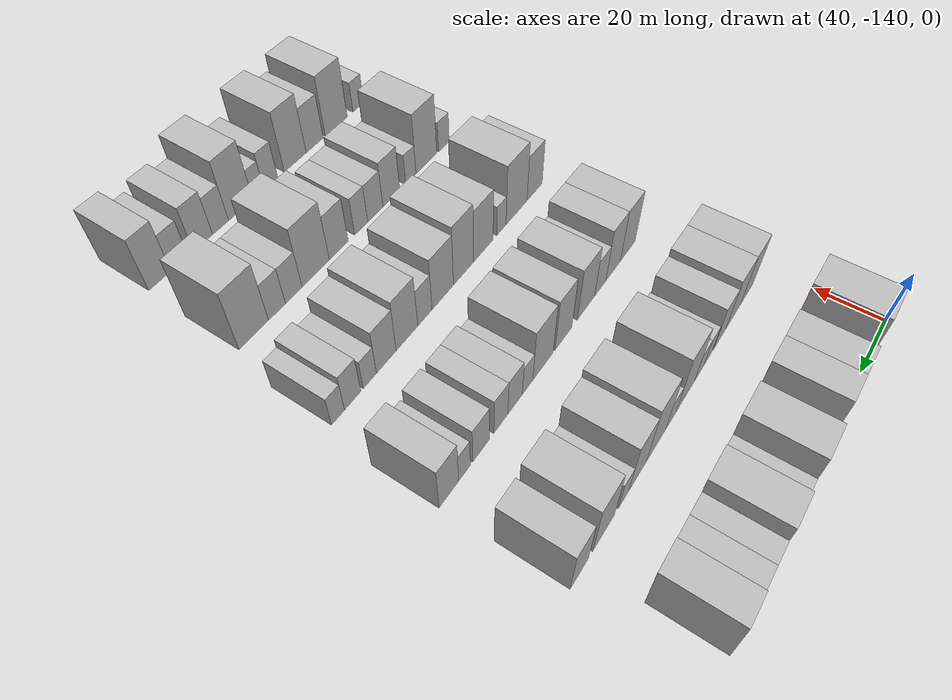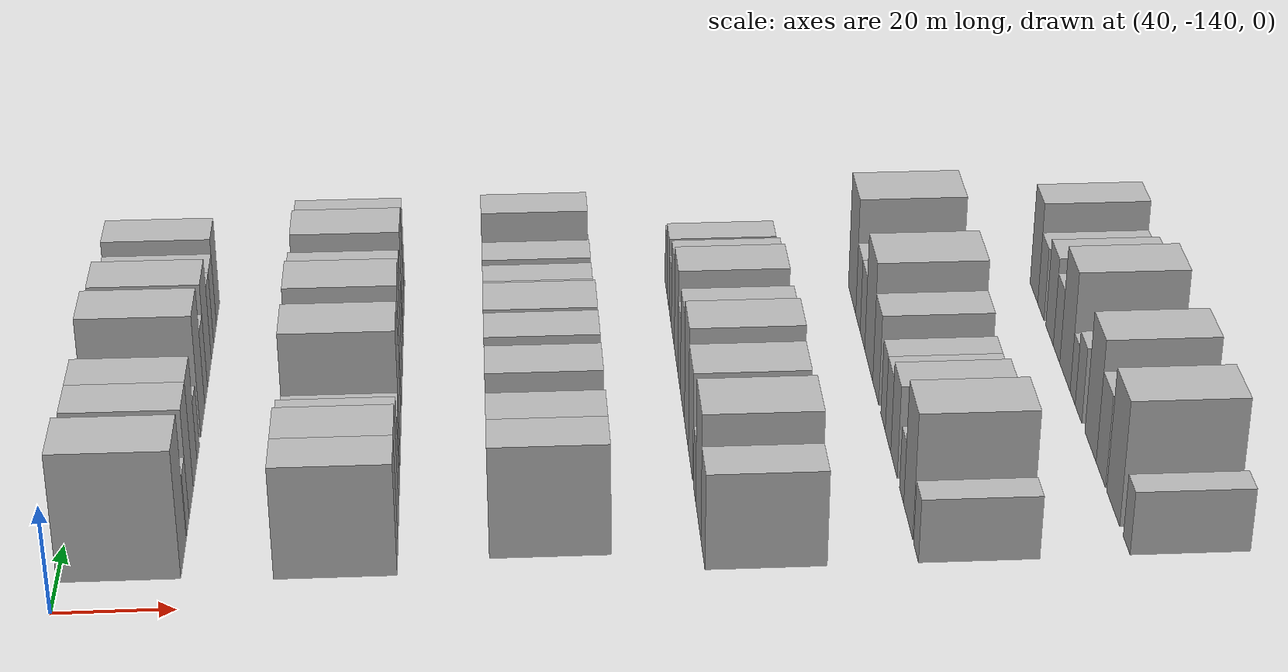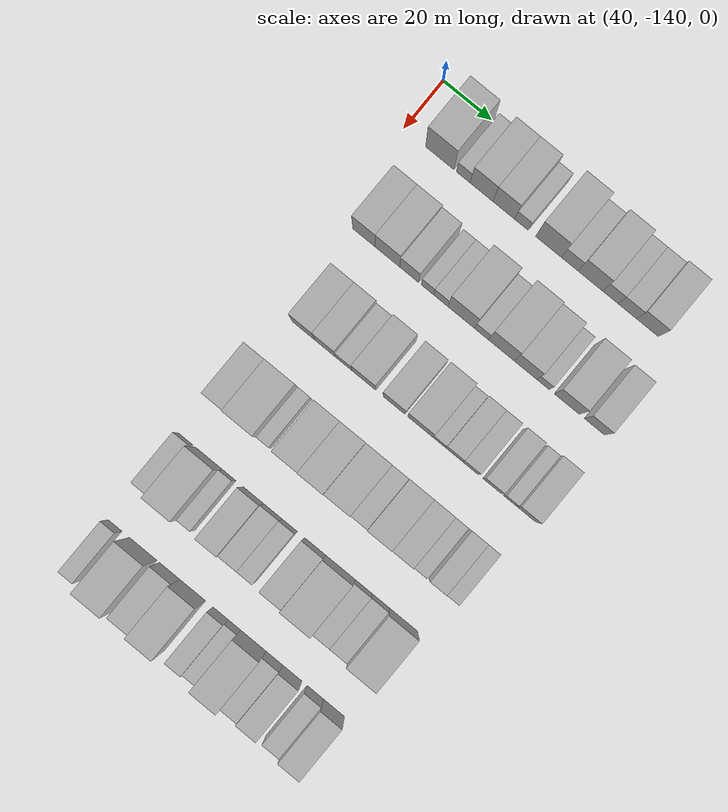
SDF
<sdf version="1.6">
 <world name="default">
  <model name="building_44">
   <static>1</static>
   <pose>50.0000 -125.1948 0 0.000000 0.000000 0.000000</pose>
   <link name="link">
    <pose>0 0 12.00 0 0 0</pose>
    <collision name="collision"><geometry><box><size>20.0000 11.6354 24.0000</size></box></geometry></collision>
    <visual name="visual">
     <cast_shadows>0</cast_shadows>
     <geometry><box><size>20.0000 11.6354 24.0000</size></box></geometry>
     <material>
      <script>
       <uri>model://HANNAS_wall/materials/scripts</uri>
       <uri>model://HANNAS_wall/materials/textures</uri>
       <name>vrc/HANNAS_wall</name>
      </script>
     </material>
    </visual>
   </link>
  </model>
  <model name="building_45">
   <static>1</static>
   <pose>50.0000 -115.5677 0 0.000000 0.000000 0.000000</pose>
   <link name="link">
    <pose>0 0 6.00 0 0 0</pose>
    <collision name="collision"><geometry><box><size>20.0000 5.6187 12.0000</size></box></geometry></collision>
    <visual name="visual">
     <cast_shadows>0</cast_shadows>
     <geometry><box><size>20.0000 5.6187 12.0000</size></box></geometry>
     <material>
      <script>
       <uri>model://HANNAS_wall/materials/scripts</uri>
       <uri>model://HANNAS_wall/materials/textures</uri>
       <name>vrc/HANNAS_wall</name>
      </script>
     </material>
    </visual>
   </link>
  </model>
  <model name="building_46">
   <static>1</static>
   <pose>50.0000 -108.0615 0 0.000000 0.000000 0.000000</pose>
   <link name="link">
    <pose>0 0 10.50 0 0 0</pose>
    <collision name="collision"><geometry><box><size>20.0000 9.3937 21.0000</size></box></geometry></collision>
    <visual name="visual">
     <cast_shadows>0</cast_shadows>
     <geometry><box><size>20.0000 9.3937 21.0000</size></box></geometry>
     <material>
      <script>
       <uri>model://HANNAS_wall/materials/scripts</uri>
       <uri>model://HANNAS_wall/materials/textures</uri>
       <name>vrc/HANNAS_wall</name>
      </script>
     </material>
    </visual>
   </link>
  </model>
  <model name="building_47">
   <static>1</static>
   <pose>50.0000 -98.9167 0 0.000000 0.000000 0.000000</pose>
   <link name="link">
    <pose>0 0 10.50 0 0 0</pose>
    <collision name="collision"><geometry><box><size>20.0000 8.8960 21.0000</size></box></geometry></collision>
    <visual name="visual">
     <cast_shadows>0</cast_shadows>
     <geometry><box><size>20.0000 8.8960 21.0000</size></box></geometry>
     <material>
      <script>
       <uri>model://HANNAS_wall/materials/scripts</uri>
       <uri>model://HANNAS_wall/materials/textures</uri>
       <name>vrc/HANNAS_wall</name>
      </script>
     </material>
    </visual>
   </link>
  </model>
  <model name="building_48">
   <static>1</static>
   <pose>50.0000 -91.6531 0 0.000000 0.000000 0.000000</pose>
   <link name="link">
    <pose>0 0 6.00 0 0 0</pose>
    <collision name="collision"><geometry><box><size>20.0000 5.6313 12.0000</size></box></geometry></collision>
    <visual name="visual">
     <cast_shadows>0</cast_shadows>
     <geometry><box><size>20.0000 5.6313 12.0000</size></box></geometry>
     <material>
      <script>
       <uri>model://HANNAS_wall/materials/scripts</uri>
       <uri>model://HANNAS_wall/materials/textures</uri>
       <name>vrc/HANNAS_wall</name>
      </script>
     </material>
    </visual>
   </link>
  </model>
  <model name="building_49">
   <static>1</static>
   <pose>50.0000 -80.5970 0 0.000000 0.000000 0.000000</pose>
   <link name="link">
    <pose>0 0 12.00 0 0 0</pose>
    <collision name="collision"><geometry><box><size>20.0000 10.4808 24.0000</size></box></geometry></collision>
    <visual name="visual">
     <cast_shadows>0</cast_shadows>
     <geometry><box><size>20.0000 10.4808 24.0000</size></box></geometry>
     <material>
      <script>
       <uri>model://HANNAS_wall/materials/scripts</uri>
       <uri>model://HANNAS_wall/materials/textures</uri>
       <name>vrc/HANNAS_wall</name>
      </script>
     </material>
    </visual>
   </link>
  </model>
  <model name="building_50">
   <static>1</static>
   <pose>50.0000 -71.9100 0 0.000000 0.000000 0.000000</pose>
   <link name="link">
    <pose>0 0 7.50 0 0 0</pose>
    <collision name="collision"><geometry><box><size>20.0000 6.8932 15.0000</size></box></geometry></collision>
    <visual name="visual">
     <cast_shadows>0</cast_shadows>
     <geometry><box><size>20.0000 6.8932 15.0000</size></box></geometry>
     <material>
      <script>
       <uri>model://HANNAS_wall/materials/scripts</uri>
       <uri>model://HANNAS_wall/materials/textures</uri>
       <name>vrc/HANNAS_wall</name>
      </script>
     </material>
    </visual>
   </link>
  </model>
  <model name="building_51">
   <static>1</static>
   <pose>50.0000 -63.4535 0 0.000000 0.000000 0.000000</pose>
   <link name="link">
    <pose>0 0 10.50 0 0 0</pose>
    <collision name="collision"><geometry><box><size>20.0000 10.0200 21.0000</size></box></geometry></collision>
    <visual name="visual">
     <cast_shadows>0</cast_shadows>
     <geometry><box><size>20.0000 10.0200 21.0000</size></box></geometry>
     <material>
      <script>
       <uri>model://HANNAS_wall/materials/scripts</uri>
       <uri>model://HANNAS_wall/materials/textures</uri>
       <name>vrc/HANNAS_wall</name>
      </script>
     </material>
    </visual>
   </link>
  </model>
  <model name="building_52">
   <static>1</static>
   <pose>50.0000 -55.2991 0 0.000000 0.000000 0.000000</pose>
   <link name="link">
    <pose>0 0 7.50 0 0 0</pose>
    <collision name="collision"><geometry><box><size>20.0000 6.2887 15.0000</size></box></geometry></collision>
    <visual name="visual">
     <cast_shadows>0</cast_shadows>
     <geometry><box><size>20.0000 6.2887 15.0000</size></box></geometry>
     <material>
      <script>
       <uri>model://HANNAS_wall/materials/scripts</uri>
       <uri>model://HANNAS_wall/materials/textures</uri>
       <name>vrc/HANNAS_wall</name>
      </script>
     </material>
    </visual>
   </link>
  </model>
  <model name="building_53">
   <static>1</static>
   <pose>50.0000 -48.4106 0 0.000000 0.000000 0.000000</pose>
   <link name="link">
    <pose>0 0 7.50 0 0 0</pose>
    <collision name="collision"><geometry><box><size>20.0000 7.4884 15.0000</size></box></geometry></collision>
    <visual name="visual">
     <cast_shadows>0</cast_shadows>
     <geometry><box><size>20.0000 7.4884 15.0000</size></box></geometry>
     <material>
      <script>
       <uri>model://HANNAS_wall/materials/scripts</uri>
       <uri>model://HANNAS_wall/materials/textures</uri>
       <name>vrc/HANNAS_wall</name>
      </script>
     </material>
    </visual>
   </link>
  </model>
  <model name="building_54">
   <static>1</static>
   <pose>50.0000 -40.1829 0 0.000000 0.000000 0.000000</pose>
   <link name="link">
    <pose>0 0 9.00 0 0 0</pose>
    <collision name="collision"><geometry><box><size>20.0000 8.9669 18.0000</size></box></geometry></collision>
    <visual name="visual">
     <cast_shadows>0</cast_shadows>
     <geometry><box><size>20.0000 8.9669 18.0000</size></box></geometry>
     <material>
      <script>
       <uri>model://HANNAS_wall/materials/scripts</uri>
       <uri>model://HANNAS_wall/materials/textures</uri>
       <name>vrc/HANNAS_wall</name>
      </script>
     </material>
    </visual>
   </link>
  </model>
  <model name="building_176">
   <static>1</static>
   <pose>85.0000 -127.4559 0 0.000000 0.000000 0.000000</pose>
   <link name="link">
    <pose>0 0 10.50 0 0 0</pose>
    <collision name="collision"><geometry><box><size>20.0000 9.1978 21.0000</size></box></geometry></collision>
    <visual name="visual">
     <cast_shadows>0</cast_shadows>
     <geometry><box><size>20.0000 9.1978 21.0000</size></box></geometry>
     <material>
      <script>
       <uri>model://HANNAS_wall/materials/scripts</uri>
       <uri>model://HANNAS_wall/materials/textures</uri>
       <name>vrc/HANNAS_wall</name>
      </script>
     </material>
    </visual>
   </link>
  </model>
  <model name="building_177">
   <static>1</static>
   <pose>85.0000 -117.8306 0 0.000000 0.000000 0.000000</pose>
   <link name="link">
    <pose>0 0 10.50 0 0 0</pose>
    <collision name="collision"><geometry><box><size>20.0000 10.0528 21.0000</size></box></geometry></collision>
    <visual name="visual">
     <cast_shadows>0</cast_shadows>
     <geometry><box><size>20.0000 10.0528 21.0000</size></box></geometry>
     <material>
      <script>
       <uri>model://HANNAS_wall/materials/scripts</uri>
       <uri>model://HANNAS_wall/materials/textures</uri>
       <name>vrc/HANNAS_wall</name>
      </script>
     </material>
    </visual>
   </link>
  </model>
  <model name="building_178">
   <static>1</static>
   <pose>85.0000 -108.9233 0 0.000000 0.000000 0.000000</pose>
   <link name="link">
    <pose>0 0 9.00 0 0 0</pose>
    <collision name="collision"><geometry><box><size>20.0000 7.7618 18.0000</size></box></geometry></collision>
    <visual name="visual">
     <cast_shadows>0</cast_shadows>
     <geometry><box><size>20.0000 7.7618 18.0000</size></box></geometry>
     <material>
      <script>
       <uri>model://HANNAS_wall/materials/scripts</uri>
       <uri>model://HANNAS_wall/materials/textures</uri>
       <name>vrc/HANNAS_wall</name>
      </script>
     </material>
    </visual>
   </link>
  </model>
  <model name="building_179">
   <static>1</static>
   <pose>85.0000 -101.5424 0 0.000000 0.000000 0.000000</pose>
   <link name="link">
    <pose>0 0 6.00 0 0 0</pose>
    <collision name="collision"><geometry><box><size>20.0000 4.9999 12.0000</size></box></geometry></collision>
    <visual name="visual">
     <cast_shadows>0</cast_shadows>
     <geometry><box><size>20.0000 4.9999 12.0000</size></box></geometry>
     <material>
      <script>
       <uri>model://HANNAS_wall/materials/scripts</uri>
       <uri>model://HANNAS_wall/materials/textures</uri>
       <name>vrc/HANNAS_wall</name>
      </script>
     </material>
    </visual>
   </link>
  </model>
  <model name="building_180">
   <static>1</static>
   <pose>85.0000 -96.0987 0 0.000000 0.000000 0.000000</pose>
   <link name="link">
    <pose>0 0 6.00 0 0 0</pose>
    <collision name="collision"><geometry><box><size>20.0000 5.8877 12.0000</size></box></geometry></collision>
    <visual name="visual">
     <cast_shadows>0</cast_shadows>
     <geometry><box><size>20.0000 5.8877 12.0000</size></box></geometry>
     <material>
      <script>
       <uri>model://HANNAS_wall/materials/scripts</uri>
       <uri>model://HANNAS_wall/materials/textures</uri>
       <name>vrc/HANNAS_wall</name>
      </script>
     </material>
    </visual>
   </link>
  </model>
  <model name="building_181">
   <static>1</static>
   <pose>85.0000 -87.7137 0 0.000000 0.000000 0.000000</pose>
   <link name="link">
    <pose>0 0 12.00 0 0 0</pose>
    <collision name="collision"><geometry><box><size>20.0000 10.8822 24.0000</size></box></geometry></collision>
    <visual name="visual">
     <cast_shadows>0</cast_shadows>
     <geometry><box><size>20.0000 10.8822 24.0000</size></box></geometry>
     <material>
      <script>
       <uri>model://HANNAS_wall/materials/scripts</uri>
       <uri>model://HANNAS_wall/materials/textures</uri>
       <name>vrc/HANNAS_wall</name>
      </script>
     </material>
    </visual>
   </link>
  </model>
  <model name="building_182">
   <static>1</static>
   <pose>85.0000 -79.3883 0 0.000000 0.000000 0.000000</pose>
   <link name="link">
    <pose>0 0 6.00 0 0 0</pose>
    <collision name="collision"><geometry><box><size>20.0000 5.7686 12.0000</size></box></geometry></collision>
    <visual name="visual">
     <cast_shadows>0</cast_shadows>
     <geometry><box><size>20.0000 5.7686 12.0000</size></box></geometry>
     <material>
      <script>
       <uri>model://HANNAS_wall/materials/scripts</uri>
       <uri>model://HANNAS_wall/materials/textures</uri>
       <name>vrc/HANNAS_wall</name>
      </script>
     </material>
    </visual>
   </link>
  </model>
  <model name="building_183">
   <static>1</static>
   <pose>85.0000 -71.2640 0 0.000000 0.000000 0.000000</pose>
   <link name="link">
    <pose>0 0 12.00 0 0 0</pose>
    <collision name="collision"><geometry><box><size>20.0000 10.4800 24.0000</size></box></geometry></collision>
    <visual name="visual">
     <cast_shadows>0</cast_shadows>
     <geometry><box><size>20.0000 10.4800 24.0000</size></box></geometry>
     <material>
      <script>
       <uri>model://HANNAS_wall/materials/scripts</uri>
       <uri>model://HANNAS_wall/materials/textures</uri>
       <name>vrc/HANNAS_wall</name>
      </script>
     </material>
    </visual>
   </link>
  </model>
  <model name="building_184">
   <static>1</static>
   <pose>85.0000 -61.4055 0 0.000000 0.000000 0.000000</pose>
   <link name="link">
    <pose>0 0 10.50 0 0 0</pose>
    <collision name="collision"><geometry><box><size>20.0000 9.2370 21.0000</size></box></geometry></collision>
    <visual name="visual">
     <cast_shadows>0</cast_shadows>
     <geometry><box><size>20.0000 9.2370 21.0000</size></box></geometry>
     <material>
      <script>
       <uri>model://HANNAS_wall/materials/scripts</uri>
       <uri>model://HANNAS_wall/materials/textures</uri>
       <name>vrc/HANNAS_wall</name>
      </script>
     </material>
    </visual>
   </link>
  </model>
  <model name="building_185">
   <static>1</static>
   <pose>85.0000 -54.2216 0 0.000000 0.000000 0.000000</pose>
   <link name="link">
    <pose>0 0 6.00 0 0 0</pose>
    <collision name="collision"><geometry><box><size>20.0000 5.1307 12.0000</size></box></geometry></collision>
    <visual name="visual">
     <cast_shadows>0</cast_shadows>
     <geometry><box><size>20.0000 5.1307 12.0000</size></box></geometry>
     <material>
      <script>
       <uri>model://HANNAS_wall/materials/scripts</uri>
       <uri>model://HANNAS_wall/materials/textures</uri>
       <name>vrc/HANNAS_wall</name>
      </script>
     </material>
    </visual>
   </link>
  </model>
  <model name="building_186">
   <static>1</static>
   <pose>85.0000 -44.5384 0 0.000000 0.000000 0.000000</pose>
   <link name="link">
    <pose>0 0 10.50 0 0 0</pose>
    <collision name="collision"><geometry><box><size>20.0000 10.2357 21.0000</size></box></geometry></collision>
    <visual name="visual">
     <cast_shadows>0</cast_shadows>
     <geometry><box><size>20.0000 10.2357 21.0000</size></box></geometry>
     <material>
      <script>
       <uri>model://HANNAS_wall/materials/scripts</uri>
       <uri>model://HANNAS_wall/materials/textures</uri>
       <name>vrc/HANNAS_wall</name>
      </script>
     </material>
    </visual>
   </link>
  </model>
  <model name="building_187">
   <static>1</static>
   <pose>85.0000 -33.3006 0 0.000000 0.000000 0.000000</pose>
   <link name="link">
    <pose>0 0 9.00 0 0 0</pose>
    <collision name="collision"><geometry><box><size>20.0000 8.2400 18.0000</size></box></geometry></collision>
    <visual name="visual">
     <cast_shadows>0</cast_shadows>
     <geometry><box><size>20.0000 8.2400 18.0000</size></box></geometry>
     <material>
      <script>
       <uri>model://HANNAS_wall/materials/scripts</uri>
       <uri>model://HANNAS_wall/materials/textures</uri>
       <name>vrc/HANNAS_wall</name>
      </script>
     </material>
    </visual>
   </link>
  </model>
  <model name="building_294">
   <static>1</static>
   <pose>120.0000 -123.2537 0 0.000000 0.000000 0.000000</pose>
   <link name="link">
    <pose>0 0 10.50 0 0 0</pose>
    <collision name="collision"><geometry><box><size>20.0000 9.1590 21.0000</size></box></geometry></collision>
    <visual name="visual">
     <cast_shadows>0</cast_shadows>
     <geometry><box><size>20.0000 9.1590 21.0000</size></box></geometry>
     <material>
      <script>
       <uri>model://HANNAS_wall/materials/scripts</uri>
       <uri>model://HANNAS_wall/materials/textures</uri>
       <name>vrc/HANNAS_wall</name>
      </script>
     </material>
    </visual>
   </link>
  </model>
  <model name="building_295">
   <static>1</static>
   <pose>120.0000 -114.3227 0 0.000000 0.000000 0.000000</pose>
   <link name="link">
    <pose>0 0 10.50 0 0 0</pose>
    <collision name="collision"><geometry><box><size>20.0000 8.7031 21.0000</size></box></geometry></collision>
    <visual name="visual">
     <cast_shadows>0</cast_shadows>
     <geometry><box><size>20.0000 8.7031 21.0000</size></box></geometry>
     <material>
      <script>
       <uri>model://HANNAS_wall/materials/scripts</uri>
       <uri>model://HANNAS_wall/materials/textures</uri>
       <name>vrc/HANNAS_wall</name>
      </script>
     </material>
    </visual>
   </link>
  </model>
  <model name="building_296">
   <static>1</static>
   <pose>120.0000 -106.6994 0 0.000000 0.000000 0.000000</pose>
   <link name="link">
    <pose>0 0 7.50 0 0 0</pose>
    <collision name="collision"><geometry><box><size>20.0000 6.5434 15.0000</size></box></geometry></collision>
    <visual name="visual">
     <cast_shadows>0</cast_shadows>
     <geometry><box><size>20.0000 6.5434 15.0000</size></box></geometry>
     <material>
      <script>
       <uri>model://HANNAS_wall/materials/scripts</uri>
       <uri>model://HANNAS_wall/materials/textures</uri>
       <name>vrc/HANNAS_wall</name>
      </script>
     </material>
    </visual>
   </link>
  </model>
  <model name="building_297">
   <static>1</static>
   <pose>120.0000 -98.6085 0 0.000000 0.000000 0.000000</pose>
   <link name="link">
    <pose>0 0 10.50 0 0 0</pose>
    <collision name="collision"><geometry><box><size>20.0000 9.6384 21.0000</size></box></geometry></collision>
    <visual name="visual">
     <cast_shadows>0</cast_shadows>
     <geometry><box><size>20.0000 9.6384 21.0000</size></box></geometry>
     <material>
      <script>
       <uri>model://HANNAS_wall/materials/scripts</uri>
       <uri>model://HANNAS_wall/materials/textures</uri>
       <name>vrc/HANNAS_wall</name>
      </script>
     </material>
    </visual>
   </link>
  </model>
  <model name="building_298">
   <static>1</static>
   <pose>120.0000 -86.3195 0 0.000000 0.000000 0.000000</pose>
   <link name="link">
    <pose>0 0 10.50 0 0 0</pose>
    <collision name="collision"><geometry><box><size>20.0000 8.9395 21.0000</size></box></geometry></collision>
    <visual name="visual">
     <cast_shadows>0</cast_shadows>
     <geometry><box><size>20.0000 8.9395 21.0000</size></box></geometry>
     <material>
      <script>
       <uri>model://HANNAS_wall/materials/scripts</uri>
       <uri>model://HANNAS_wall/materials/textures</uri>
       <name>vrc/HANNAS_wall</name>
      </script>
     </material>
    </visual>
   </link>
  </model>
  <model name="building_299">
   <static>1</static>
   <pose>120.0000 -75.7126 0 0.000000 0.000000 0.000000</pose>
   <link name="link">
    <pose>0 0 10.50 0 0 0</pose>
    <collision name="collision"><geometry><box><size>20.0000 10.2743 21.0000</size></box></geometry></collision>
    <visual name="visual">
     <cast_shadows>0</cast_shadows>
     <geometry><box><size>20.0000 10.2743 21.0000</size></box></geometry>
     <material>
      <script>
       <uri>model://HANNAS_wall/materials/scripts</uri>
       <uri>model://HANNAS_wall/materials/textures</uri>
       <name>vrc/HANNAS_wall</name>
      </script>
     </material>
    </visual>
   </link>
  </model>
  <model name="building_300">
   <static>1</static>
   <pose>120.0000 -68.0052 0 0.000000 0.000000 0.000000</pose>
   <link name="link">
    <pose>0 0 6.00 0 0 0</pose>
    <collision name="collision"><geometry><box><size>20.0000 5.1406 12.0000</size></box></geometry></collision>
    <visual name="visual">
     <cast_shadows>0</cast_shadows>
     <geometry><box><size>20.0000 5.1406 12.0000</size></box></geometry>
     <material>
      <script>
       <uri>model://HANNAS_wall/materials/scripts</uri>
       <uri>model://HANNAS_wall/materials/textures</uri>
       <name>vrc/HANNAS_wall</name>
      </script>
     </material>
    </visual>
   </link>
  </model>
  <model name="building_301">
   <static>1</static>
   <pose>120.0000 -61.9763 0 0.000000 0.000000 0.000000</pose>
   <link name="link">
    <pose>0 0 7.50 0 0 0</pose>
    <collision name="collision"><geometry><box><size>20.0000 6.9171 15.0000</size></box></geometry></collision>
    <visual name="visual">
     <cast_shadows>0</cast_shadows>
     <geometry><box><size>20.0000 6.9171 15.0000</size></box></geometry>
     <material>
      <script>
       <uri>model://HANNAS_wall/materials/scripts</uri>
       <uri>model://HANNAS_wall/materials/textures</uri>
       <name>vrc/HANNAS_wall</name>
      </script>
     </material>
    </visual>
   </link>
  </model>
  <model name="building_302">
   <static>1</static>
   <pose>120.0000 -55.3268 0 0.000000 0.000000 0.000000</pose>
   <link name="link">
    <pose>0 0 7.50 0 0 0</pose>
    <collision name="collision"><geometry><box><size>20.0000 6.3819 15.0000</size></box></geometry></collision>
    <visual name="visual">
     <cast_shadows>0</cast_shadows>
     <geometry><box><size>20.0000 6.3819 15.0000</size></box></geometry>
     <material>
      <script>
       <uri>model://HANNAS_wall/materials/scripts</uri>
       <uri>model://HANNAS_wall/materials/textures</uri>
       <name>vrc/HANNAS_wall</name>
      </script>
     </material>
    </visual>
   </link>
  </model>
  <model name="building_303">
   <static>1</static>
   <pose>120.0000 -46.4385 0 0.000000 0.000000 0.000000</pose>
   <link name="link">
    <pose>0 0 7.50 0 0 0</pose>
    <collision name="collision"><geometry><box><size>20.0000 7.3947 15.0000</size></box></geometry></collision>
    <visual name="visual">
     <cast_shadows>0</cast_shadows>
     <geometry><box><size>20.0000 7.3947 15.0000</size></box></geometry>
     <material>
      <script>
       <uri>model://HANNAS_wall/materials/scripts</uri>
       <uri>model://HANNAS_wall/materials/textures</uri>
       <name>vrc/HANNAS_wall</name>
      </script>
     </material>
    </visual>
   </link>
  </model>
  <model name="building_304">
   <static>1</static>
   <pose>120.0000 -39.2498 0 0.000000 0.000000 0.000000</pose>
   <link name="link">
    <pose>0 0 6.00 0 0 0</pose>
    <collision name="collision"><geometry><box><size>20.0000 4.9827 12.0000</size></box></geometry></collision>
    <visual name="visual">
     <cast_shadows>0</cast_shadows>
     <geometry><box><size>20.0000 4.9827 12.0000</size></box></geometry>
     <material>
      <script>
       <uri>model://HANNAS_wall/materials/scripts</uri>
       <uri>model://HANNAS_wall/materials/textures</uri>
       <name>vrc/HANNAS_wall</name>
      </script>
     </material>
    </visual>
   </link>
  </model>
  <model name="building_305">
   <static>1</static>
   <pose>120.0000 -32.7090 0 0.000000 0.000000 0.000000</pose>
   <link name="link">
    <pose>0 0 9.00 0 0 0</pose>
    <collision name="collision"><geometry><box><size>20.0000 8.0989 18.0000</size></box></geometry></collision>
    <visual name="visual">
     <cast_shadows>0</cast_shadows>
     <geometry><box><size>20.0000 8.0989 18.0000</size></box></geometry>
     <material>
      <script>
       <uri>model://HANNAS_wall/materials/scripts</uri>
       <uri>model://HANNAS_wall/materials/textures</uri>
       <name>vrc/HANNAS_wall</name>
      </script>
     </material>
    </visual>
   </link>
  </model>
  <model name="building_416">
   <static>1</static>
   <pose>155.0000 -128.7834 0 0.000000 0.000000 0.000000</pose>
   <link name="link">
    <pose>0 0 9.00 0 0 0</pose>
    <collision name="collision"><geometry><box><size>20.0000 8.8637 18.0000</size></box></geometry></collision>
    <visual name="visual">
     <cast_shadows>0</cast_shadows>
     <geometry><box><size>20.0000 8.8637 18.0000</size></box></geometry>
     <material>
      <script>
       <uri>model://HANNAS_wall/materials/scripts</uri>
       <uri>model://HANNAS_wall/materials/textures</uri>
       <name>vrc/HANNAS_wall</name>
      </script>
     </material>
    </visual>
   </link>
  </model>
  <model name="building_417">
   <static>1</static>
   <pose>155.0000 -118.3941 0 0.000000 0.000000 0.000000</pose>
   <link name="link">
    <pose>0 0 12.00 0 0 0</pose>
    <collision name="collision"><geometry><box><size>20.0000 11.9148 24.0000</size></box></geometry></collision>
    <visual name="visual">
     <cast_shadows>0</cast_shadows>
     <geometry><box><size>20.0000 11.9148 24.0000</size></box></geometry>
     <material>
      <script>
       <uri>model://HANNAS_wall/materials/scripts</uri>
       <uri>model://HANNAS_wall/materials/textures</uri>
       <name>vrc/HANNAS_wall</name>
      </script>
     </material>
    </visual>
   </link>
  </model>
  <model name="building_418">
   <static>1</static>
   <pose>155.0000 -109.9319 0 0.000000 0.000000 0.000000</pose>
   <link name="link">
    <pose>0 0 6.00 0 0 0</pose>
    <collision name="collision"><geometry><box><size>20.0000 5.0096 12.0000</size></box></geometry></collision>
    <visual name="visual">
     <cast_shadows>0</cast_shadows>
     <geometry><box><size>20.0000 5.0096 12.0000</size></box></geometry>
     <material>
      <script>
       <uri>model://HANNAS_wall/materials/scripts</uri>
       <uri>model://HANNAS_wall/materials/textures</uri>
       <name>vrc/HANNAS_wall</name>
      </script>
     </material>
    </visual>
   </link>
  </model>
  <model name="building_419">
   <static>1</static>
   <pose>155.0000 -100.2900 0 0.000000 0.000000 0.000000</pose>
   <link name="link">
    <pose>0 0 10.50 0 0 0</pose>
    <collision name="collision"><geometry><box><size>20.0000 10.2742 21.0000</size></box></geometry></collision>
    <visual name="visual">
     <cast_shadows>0</cast_shadows>
     <geometry><box><size>20.0000 10.2742 21.0000</size></box></geometry>
     <material>
      <script>
       <uri>model://HANNAS_wall/materials/scripts</uri>
       <uri>model://HANNAS_wall/materials/textures</uri>
       <name>vrc/HANNAS_wall</name>
      </script>
     </material>
    </visual>
   </link>
  </model>
  <model name="building_420">
   <static>1</static>
   <pose>155.0000 -90.1247 0 0.000000 0.000000 0.000000</pose>
   <link name="link">
    <pose>0 0 12.00 0 0 0</pose>
    <collision name="collision"><geometry><box><size>20.0000 10.0564 24.0000</size></box></geometry></collision>
    <visual name="visual">
     <cast_shadows>0</cast_shadows>
     <geometry><box><size>20.0000 10.0564 24.0000</size></box></geometry>
     <material>
      <script>
       <uri>model://HANNAS_wall/materials/scripts</uri>
       <uri>model://HANNAS_wall/materials/textures</uri>
       <name>vrc/HANNAS_wall</name>
      </script>
     </material>
    </visual>
   </link>
  </model>
  <model name="building_421">
   <static>1</static>
   <pose>155.0000 -79.9105 0 0.000000 0.000000 0.000000</pose>
   <link name="link">
    <pose>0 0 10.50 0 0 0</pose>
    <collision name="collision"><geometry><box><size>20.0000 10.3719 21.0000</size></box></geometry></collision>
    <visual name="visual">
     <cast_shadows>0</cast_shadows>
     <geometry><box><size>20.0000 10.3719 21.0000</size></box></geometry>
     <material>
      <script>
       <uri>model://HANNAS_wall/materials/scripts</uri>
       <uri>model://HANNAS_wall/materials/textures</uri>
       <name>vrc/HANNAS_wall</name>
      </script>
     </material>
    </visual>
   </link>
  </model>
  <model name="building_422">
   <static>1</static>
   <pose>155.0000 -71.4096 0 0.000000 0.000000 0.000000</pose>
   <link name="link">
    <pose>0 0 7.50 0 0 0</pose>
    <collision name="collision"><geometry><box><size>20.0000 6.6300 15.0000</size></box></geometry></collision>
    <visual name="visual">
     <cast_shadows>0</cast_shadows>
     <geometry><box><size>20.0000 6.6300 15.0000</size></box></geometry>
     <material>
      <script>
       <uri>model://HANNAS_wall/materials/scripts</uri>
       <uri>model://HANNAS_wall/materials/textures</uri>
       <name>vrc/HANNAS_wall</name>
      </script>
     </material>
    </visual>
   </link>
  </model>
  <model name="building_423">
   <static>1</static>
   <pose>155.0000 -63.2566 0 0.000000 0.000000 0.000000</pose>
   <link name="link">
    <pose>0 0 10.50 0 0 0</pose>
    <collision name="collision"><geometry><box><size>20.0000 9.6760 21.0000</size></box></geometry></collision>
    <visual name="visual">
     <cast_shadows>0</cast_shadows>
     <geometry><box><size>20.0000 9.6760 21.0000</size></box></geometry>
     <material>
      <script>
       <uri>model://HANNAS_wall/materials/scripts</uri>
       <uri>model://HANNAS_wall/materials/textures</uri>
       <name>vrc/HANNAS_wall</name>
      </script>
     </material>
    </visual>
   </link>
  </model>
  <model name="building_424">
   <static>1</static>
   <pose>155.0000 -54.1730 0 0.000000 0.000000 0.000000</pose>
   <link name="link">
    <pose>0 0 9.00 0 0 0</pose>
    <collision name="collision"><geometry><box><size>20.0000 8.4913 18.0000</size></box></geometry></collision>
    <visual name="visual">
     <cast_shadows>0</cast_shadows>
     <geometry><box><size>20.0000 8.4913 18.0000</size></box></geometry>
     <material>
      <script>
       <uri>model://HANNAS_wall/materials/scripts</uri>
       <uri>model://HANNAS_wall/materials/textures</uri>
       <name>vrc/HANNAS_wall</name>
      </script>
     </material>
    </visual>
   </link>
  </model>
  <model name="building_425">
   <static>1</static>
   <pose>155.0000 -47.1718 0 0.000000 0.000000 0.000000</pose>
   <link name="link">
    <pose>0 0 6.00 0 0 0</pose>
    <collision name="collision"><geometry><box><size>20.0000 5.5110 12.0000</size></box></geometry></collision>
    <visual name="visual">
     <cast_shadows>0</cast_shadows>
     <geometry><box><size>20.0000 5.5110 12.0000</size></box></geometry>
     <material>
      <script>
       <uri>model://HANNAS_wall/materials/scripts</uri>
       <uri>model://HANNAS_wall/materials/textures</uri>
       <name>vrc/HANNAS_wall</name>
      </script>
     </material>
    </visual>
   </link>
  </model>
  <model name="building_426">
   <static>1</static>
   <pose>155.0000 -40.1226 0 0.000000 0.000000 0.000000</pose>
   <link name="link">
    <pose>0 0 7.50 0 0 0</pose>
    <collision name="collision"><geometry><box><size>20.0000 6.5875 15.0000</size></box></geometry></collision>
    <visual name="visual">
     <cast_shadows>0</cast_shadows>
     <geometry><box><size>20.0000 6.5875 15.0000</size></box></geometry>
     <material>
      <script>
       <uri>model://HANNAS_wall/materials/scripts</uri>
       <uri>model://HANNAS_wall/materials/textures</uri>
       <name>vrc/HANNAS_wall</name>
      </script>
     </material>
    </visual>
   </link>
  </model>
  <model name="building_427">
   <static>1</static>
   <pose>155.0000 -34.2712 0 0.000000 0.000000 0.000000</pose>
   <link name="link">
    <pose>0 0 6.00 0 0 0</pose>
    <collision name="collision"><geometry><box><size>20.0000 5.1152 12.0000</size></box></geometry></collision>
    <visual name="visual">
     <cast_shadows>0</cast_shadows>
     <geometry><box><size>20.0000 5.1152 12.0000</size></box></geometry>
     <material>
      <script>
       <uri>model://HANNAS_wall/materials/scripts</uri>
       <uri>model://HANNAS_wall/materials/textures</uri>
       <name>vrc/HANNAS_wall</name>
      </script>
     </material>
    </visual>
   </link>
  </model>
  <model name="building_540">
   <static>1</static>
   <pose>190.0000 -130.1263 0 0.000000 0.000000 0.000000</pose>
   <link name="link">
    <pose>0 0 6.00 0 0 0</pose>
    <collision name="collision"><geometry><box><size>20.0000 5.9580 12.0000</size></box></geometry></collision>
    <visual name="visual">
     <cast_shadows>0</cast_shadows>
     <geometry><box><size>20.0000 5.9580 12.0000</size></box></geometry>
     <material>
      <script>
       <uri>model://HANNAS_wall/materials/scripts</uri>
       <uri>model://HANNAS_wall/materials/textures</uri>
       <name>vrc/HANNAS_wall</name>
      </script>
     </material>
    </visual>
   </link>
  </model>
  <model name="building_541">
   <static>1</static>
   <pose>190.0000 -120.5544 0 0.000000 0.000000 0.000000</pose>
   <link name="link">
    <pose>0 0 12.00 0 0 0</pose>
    <collision name="collision"><geometry><box><size>20.0000 11.1860 24.0000</size></box></geometry></collision>
    <visual name="visual">
     <cast_shadows>0</cast_shadows>
     <geometry><box><size>20.0000 11.1860 24.0000</size></box></geometry>
     <material>
      <script>
       <uri>model://HANNAS_wall/materials/scripts</uri>
       <uri>model://HANNAS_wall/materials/textures</uri>
       <name>vrc/HANNAS_wall</name>
      </script>
     </material>
    </visual>
   </link>
  </model>
  <model name="building_542">
   <static>1</static>
   <pose>190.0000 -112.2590 0 0.000000 0.000000 0.000000</pose>
   <link name="link">
    <pose>0 0 6.00 0 0 0</pose>
    <collision name="collision"><geometry><box><size>20.0000 5.4048 12.0000</size></box></geometry></collision>
    <visual name="visual">
     <cast_shadows>0</cast_shadows>
     <geometry><box><size>20.0000 5.4048 12.0000</size></box></geometry>
     <material>
      <script>
       <uri>model://HANNAS_wall/materials/scripts</uri>
       <uri>model://HANNAS_wall/materials/textures</uri>
       <name>vrc/HANNAS_wall</name>
      </script>
     </material>
    </visual>
   </link>
  </model>
  <model name="building_543">
   <static>1</static>
   <pose>190.0000 -102.3057 0 0.000000 0.000000 0.000000</pose>
   <link name="link">
    <pose>0 0 9.00 0 0 0</pose>
    <collision name="collision"><geometry><box><size>20.0000 8.5017 18.0000</size></box></geometry></collision>
    <visual name="visual">
     <cast_shadows>0</cast_shadows>
     <geometry><box><size>20.0000 8.5017 18.0000</size></box></geometry>
     <material>
      <script>
       <uri>model://HANNAS_wall/materials/scripts</uri>
       <uri>model://HANNAS_wall/materials/textures</uri>
       <name>vrc/HANNAS_wall</name>
      </script>
     </material>
    </visual>
   </link>
  </model>
  <model name="building_544">
   <static>1</static>
   <pose>190.0000 -94.3399 0 0.000000 0.000000 0.000000</pose>
   <link name="link">
    <pose>0 0 7.50 0 0 0</pose>
    <collision name="collision"><geometry><box><size>20.0000 7.4298 15.0000</size></box></geometry></collision>
    <visual name="visual">
     <cast_shadows>0</cast_shadows>
     <geometry><box><size>20.0000 7.4298 15.0000</size></box></geometry>
     <material>
      <script>
       <uri>model://HANNAS_wall/materials/scripts</uri>
       <uri>model://HANNAS_wall/materials/textures</uri>
       <name>vrc/HANNAS_wall</name>
      </script>
     </material>
    </visual>
   </link>
  </model>
  <model name="building_545">
   <static>1</static>
   <pose>190.0000 -87.5377 0 0.000000 0.000000 0.000000</pose>
   <link name="link">
    <pose>0 0 7.50 0 0 0</pose>
    <collision name="collision"><geometry><box><size>20.0000 6.1746 15.0000</size></box></geometry></collision>
    <visual name="visual">
     <cast_shadows>0</cast_shadows>
     <geometry><box><size>20.0000 6.1746 15.0000</size></box></geometry>
     <material>
      <script>
       <uri>model://HANNAS_wall/materials/scripts</uri>
       <uri>model://HANNAS_wall/materials/textures</uri>
       <name>vrc/HANNAS_wall</name>
      </script>
     </material>
    </visual>
   </link>
  </model>
  <model name="building_546">
   <static>1</static>
   <pose>190.0000 -77.1733 0 0.000000 0.000000 0.000000</pose>
   <link name="link">
    <pose>0 0 9.00 0 0 0</pose>
    <collision name="collision"><geometry><box><size>20.0000 8.5542 18.0000</size></box></geometry></collision>
    <visual name="visual">
     <cast_shadows>0</cast_shadows>
     <geometry><box><size>20.0000 8.5542 18.0000</size></box></geometry>
     <material>
      <script>
       <uri>model://HANNAS_wall/materials/scripts</uri>
       <uri>model://HANNAS_wall/materials/textures</uri>
       <name>vrc/HANNAS_wall</name>
      </script>
     </material>
    </visual>
   </link>
  </model>
  <model name="building_547">
   <static>1</static>
   <pose>190.0000 -66.9399 0 0.000000 0.000000 0.000000</pose>
   <link name="link">
    <pose>0 0 12.00 0 0 0</pose>
    <collision name="collision"><geometry><box><size>20.0000 11.9125 24.0000</size></box></geometry></collision>
    <visual name="visual">
     <cast_shadows>0</cast_shadows>
     <geometry><box><size>20.0000 11.9125 24.0000</size></box></geometry>
     <material>
      <script>
       <uri>model://HANNAS_wall/materials/scripts</uri>
       <uri>model://HANNAS_wall/materials/textures</uri>
       <name>vrc/HANNAS_wall</name>
      </script>
     </material>
    </visual>
   </link>
  </model>
  <model name="building_548">
   <static>1</static>
   <pose>190.0000 -57.5009 0 0.000000 0.000000 0.000000</pose>
   <link name="link">
    <pose>0 0 7.50 0 0 0</pose>
    <collision name="collision"><geometry><box><size>20.0000 6.9656 15.0000</size></box></geometry></collision>
    <visual name="visual">
     <cast_shadows>0</cast_shadows>
     <geometry><box><size>20.0000 6.9656 15.0000</size></box></geometry>
     <material>
      <script>
       <uri>model://HANNAS_wall/materials/scripts</uri>
       <uri>model://HANNAS_wall/materials/textures</uri>
       <name>vrc/HANNAS_wall</name>
      </script>
     </material>
    </visual>
   </link>
  </model>
  <model name="building_549">
   <static>1</static>
   <pose>190.0000 -50.5875 0 0.000000 0.000000 0.000000</pose>
   <link name="link">
    <pose>0 0 7.50 0 0 0</pose>
    <collision name="collision"><geometry><box><size>20.0000 6.8612 15.0000</size></box></geometry></collision>
    <visual name="visual">
     <cast_shadows>0</cast_shadows>
     <geometry><box><size>20.0000 6.8612 15.0000</size></box></geometry>
     <material>
      <script>
       <uri>model://HANNAS_wall/materials/scripts</uri>
       <uri>model://HANNAS_wall/materials/textures</uri>
       <name>vrc/HANNAS_wall</name>
      </script>
     </material>
    </visual>
   </link>
  </model>
  <model name="building_550">
   <static>1</static>
   <pose>190.0000 -41.3615 0 0.000000 0.000000 0.000000</pose>
   <link name="link">
    <pose>0 0 12.00 0 0 0</pose>
    <collision name="collision"><geometry><box><size>20.0000 11.5908 24.0000</size></box></geometry></collision>
    <visual name="visual">
     <cast_shadows>0</cast_shadows>
     <geometry><box><size>20.0000 11.5908 24.0000</size></box></geometry>
     <material>
      <script>
       <uri>model://HANNAS_wall/materials/scripts</uri>
       <uri>model://HANNAS_wall/materials/textures</uri>
       <name>vrc/HANNAS_wall</name>
      </script>
     </material>
    </visual>
   </link>
  </model>
  <model name="building_671">
   <static>1</static>
   <pose>225.0000 -129.9064 0 0.000000 0.000000 0.000000</pose>
   <link name="link">
    <pose>0 0 6.00 0 0 0</pose>
    <collision name="collision"><geometry><box><size>20.0000 5.6840 12.0000</size></box></geometry></collision>
    <visual name="visual">
     <cast_shadows>0</cast_shadows>
     <geometry><box><size>20.0000 5.6840 12.0000</size></box></geometry>
     <material>
      <script>
       <uri>model://HANNAS_wall/materials/scripts</uri>
       <uri>model://HANNAS_wall/materials/textures</uri>
       <name>vrc/HANNAS_wall</name>
      </script>
     </material>
    </visual>
   </link>
  </model>
  <model name="building_672">
   <static>1</static>
   <pose>225.0000 -118.3962 0 0.000000 0.000000 0.000000</pose>
   <link name="link">
    <pose>0 0 12.00 0 0 0</pose>
    <collision name="collision"><geometry><box><size>20.0000 11.3362 24.0000</size></box></geometry></collision>
    <visual name="visual">
     <cast_shadows>0</cast_shadows>
     <geometry><box><size>20.0000 11.3362 24.0000</size></box></geometry>
     <material>
      <script>
       <uri>model://HANNAS_wall/materials/scripts</uri>
       <uri>model://HANNAS_wall/materials/textures</uri>
       <name>vrc/HANNAS_wall</name>
      </script>
     </material>
    </visual>
   </link>
  </model>
  <model name="building_673">
   <static>1</static>
   <pose>225.0000 -107.5091 0 0.000000 0.000000 0.000000</pose>
   <link name="link">
    <pose>0 0 9.00 0 0 0</pose>
    <collision name="collision"><geometry><box><size>20.0000 8.4380 18.0000</size></box></geometry></collision>
    <visual name="visual">
     <cast_shadows>0</cast_shadows>
     <geometry><box><size>20.0000 8.4380 18.0000</size></box></geometry>
     <material>
      <script>
       <uri>model://HANNAS_wall/materials/scripts</uri>
       <uri>model://HANNAS_wall/materials/textures</uri>
       <name>vrc/HANNAS_wall</name>
      </script>
     </material>
    </visual>
   </link>
  </model>
  <model name="building_674">
   <static>1</static>
   <pose>225.0000 -98.0731 0 0.000000 0.000000 0.000000</pose>
   <link name="link">
    <pose>0 0 12.00 0 0 0</pose>
    <collision name="collision"><geometry><box><size>20.0000 10.4339 24.0000</size></box></geometry></collision>
    <visual name="visual">
     <cast_shadows>0</cast_shadows>
     <geometry><box><size>20.0000 10.4339 24.0000</size></box></geometry>
     <material>
      <script>
       <uri>model://HANNAS_wall/materials/scripts</uri>
       <uri>model://HANNAS_wall/materials/textures</uri>
       <name>vrc/HANNAS_wall</name>
      </script>
     </material>
    </visual>
   </link>
  </model>
  <model name="building_675">
   <static>1</static>
   <pose>225.0000 -86.6756 0 0.000000 0.000000 0.000000</pose>
   <link name="link">
    <pose>0 0 7.50 0 0 0</pose>
    <collision name="collision"><geometry><box><size>20.0000 6.3612 15.0000</size></box></geometry></collision>
    <visual name="visual">
     <cast_shadows>0</cast_shadows>
     <geometry><box><size>20.0000 6.3612 15.0000</size></box></geometry>
     <material>
      <script>
       <uri>model://HANNAS_wall/materials/scripts</uri>
       <uri>model://HANNAS_wall/materials/textures</uri>
       <name>vrc/HANNAS_wall</name>
      </script>
     </material>
    </visual>
   </link>
  </model>
  <model name="building_676">
   <static>1</static>
   <pose>225.0000 -81.0125 0 0.000000 0.000000 0.000000</pose>
   <link name="link">
    <pose>0 0 6.00 0 0 0</pose>
    <collision name="collision"><geometry><box><size>20.0000 4.9650 12.0000</size></box></geometry></collision>
    <visual name="visual">
     <cast_shadows>0</cast_shadows>
     <geometry><box><size>20.0000 4.9650 12.0000</size></box></geometry>
     <material>
      <script>
       <uri>model://HANNAS_wall/materials/scripts</uri>
       <uri>model://HANNAS_wall/materials/textures</uri>
       <name>vrc/HANNAS_wall</name>
      </script>
     </material>
    </visual>
   </link>
  </model>
  <model name="building_677">
   <static>1</static>
   <pose>225.0000 -73.3204 0 0.000000 0.000000 0.000000</pose>
   <link name="link">
    <pose>0 0 12.00 0 0 0</pose>
    <collision name="collision"><geometry><box><size>20.0000 10.4191 24.0000</size></box></geometry></collision>
    <visual name="visual">
     <cast_shadows>0</cast_shadows>
     <geometry><box><size>20.0000 10.4191 24.0000</size></box></geometry>
     <material>
      <script>
       <uri>model://HANNAS_wall/materials/scripts</uri>
       <uri>model://HANNAS_wall/materials/textures</uri>
       <name>vrc/HANNAS_wall</name>
      </script>
     </material>
    </visual>
   </link>
  </model>
  <model name="building_678">
   <static>1</static>
   <pose>225.0000 -64.7744 0 0.000000 0.000000 0.000000</pose>
   <link name="link">
    <pose>0 0 7.50 0 0 0</pose>
    <collision name="collision"><geometry><box><size>20.0000 6.6730 15.0000</size></box></geometry></collision>
    <visual name="visual">
     <cast_shadows>0</cast_shadows>
     <geometry><box><size>20.0000 6.6730 15.0000</size></box></geometry>
     <material>
      <script>
       <uri>model://HANNAS_wall/materials/scripts</uri>
       <uri>model://HANNAS_wall/materials/textures</uri>
       <name>vrc/HANNAS_wall</name>
      </script>
     </material>
    </visual>
   </link>
  </model>
  <model name="building_679">
   <static>1</static>
   <pose>225.0000 -57.4790 0 0.000000 0.000000 0.000000</pose>
   <link name="link">
    <pose>0 0 9.00 0 0 0</pose>
    <collision name="collision"><geometry><box><size>20.0000 7.9177 18.0000</size></box></geometry></collision>
    <visual name="visual">
     <cast_shadows>0</cast_shadows>
     <geometry><box><size>20.0000 7.9177 18.0000</size></box></geometry>
     <material>
      <script>
       <uri>model://HANNAS_wall/materials/scripts</uri>
       <uri>model://HANNAS_wall/materials/textures</uri>
       <name>vrc/HANNAS_wall</name>
      </script>
     </material>
    </visual>
   </link>
  </model>
  <model name="building_680">
   <static>1</static>
   <pose>225.0000 -48.1356 0 0.000000 0.000000 0.000000</pose>
   <link name="link">
    <pose>0 0 7.50 0 0 0</pose>
    <collision name="collision"><geometry><box><size>20.0000 6.7692 15.0000</size></box></geometry></collision>
    <visual name="visual">
     <cast_shadows>0</cast_shadows>
     <geometry><box><size>20.0000 6.7692 15.0000</size></box></geometry>
     <material>
      <script>
       <uri>model://HANNAS_wall/materials/scripts</uri>
       <uri>model://HANNAS_wall/materials/textures</uri>
       <name>vrc/HANNAS_wall</name>
      </script>
     </material>
    </visual>
   </link>
  </model>
  <model name="building_681">
   <static>1</static>
   <pose>225.0000 -40.5302 0 0.000000 0.000000 0.000000</pose>
   <link name="link">
    <pose>0 0 10.50 0 0 0</pose>
    <collision name="collision"><geometry><box><size>20.0000 8.4415 21.0000</size></box></geometry></collision>
    <visual name="visual">
     <cast_shadows>0</cast_shadows>
     <geometry><box><size>20.0000 8.4415 21.0000</size></box></geometry>
     <material>
      <script>
       <uri>model://HANNAS_wall/materials/scripts</uri>
       <uri>model://HANNAS_wall/materials/textures</uri>
       <name>vrc/HANNAS_wall</name>
      </script>
     </material>
    </visual>
   </link>
  </model>
 </world>
</sdf>
